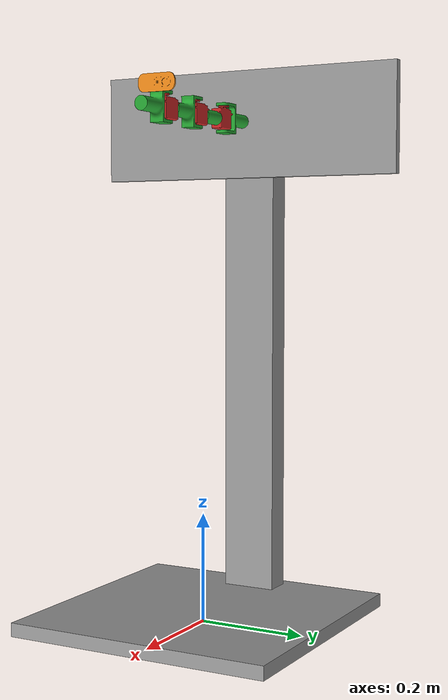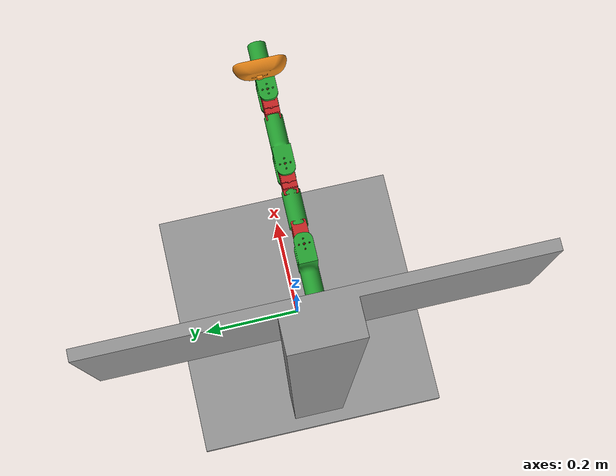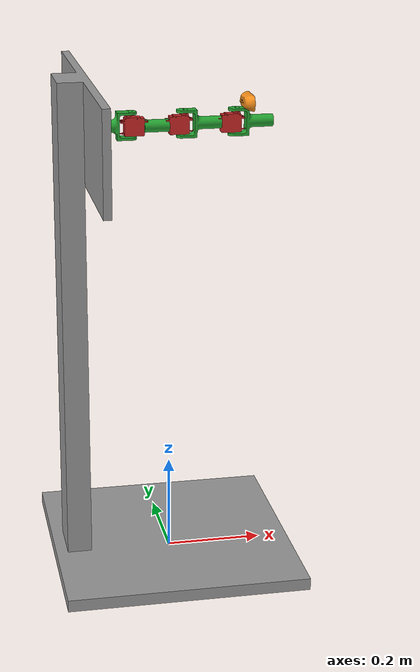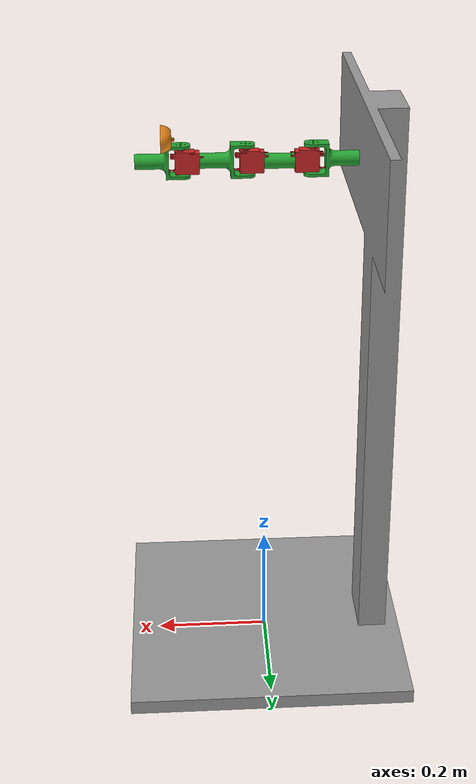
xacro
<?xml version="1.0"?>
<robot xmlns:xacro="http://www.ros.org/wiki/xacro" name="protobot">
    <xacro:arg name="initial_positions_file" default="initial_positions.yaml" />

    <!-- Import protobot urdf file -->
    <xacro:include filename="$(find protobot_description)/urdf/protobot.urdf.xacro" />

    <!-- Import control_xacro -->
    <xacro:include filename="protobot.ros2_control.xacro" />

    <xacro:protobot_ros2_control name="FakeSystem" initial_positions_file="$(arg initial_positions_file)"/>

</robot>

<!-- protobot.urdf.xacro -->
<robot name="protobot" xmlns:xacro="http://www.ros.org/wiki/xacro">

    <xacro:arg name="is_sim" default="true"/>

    <xacro:include filename="$(find protobot_description)/urdf/common_properties.xacro"/>
    <xacro:include filename="$(find protobot_description)/urdf/structure.xacro"/>
    <xacro:include filename="$(find protobot_description)/urdf/gazebo.xacro"/>
    <xacro:include filename="$(find protobot_description)/urdf/controls.xacro"/>

</robot>

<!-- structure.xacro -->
<robot xmlns:xacro="http://www.ros.org/wiki/xacro">

    <xacro:property name="mass_base" value="16.875" />
    <xacro:property name="mass_mountPost" value="2.437" />
    <xacro:property name="mass_rod0End" value="0.066" />
    <xacro:property name="mass_rod1End" value="0.111" />
    <xacro:property name="mass_servoMotor" value="0.055" />
    <xacro:property name="mass_webcam" value="0.028" />

    <link name="world" />

    <link name="base_link">
        <visual>
            <origin xyz="-0.25 -0.25 0" rpy="0 0 0" />
            <geometry>
                <mesh filename="package://protobot_description/meshes/base_gz0.01.STL"
                    scale="0.001 0.001 0.001" />
            </geometry>
            <material name="grey" />
        </visual>
        <collision>
            <origin xyz="-0.25 -0.25 0" rpy="0 0 0" />
            <geometry>
                <mesh filename="package://protobot_description/meshes/base_gz0.01.STL"
                    scale="0.001 0.001 0.001" />
            </geometry>
        </collision>
        <inertial>
            <mass value="${mass_base}" />
            <inertia ixx="0.352441" ixy="0" ixz="0"
                iyy="0.352441" iyz="0"
                izz="0.703125" />
        </inertial>
    </link>

    <link name="mountPost_link">
        <visual>
            <origin xyz="-0.0254 -0.3008 0" rpy="${pi/2} 0 ${pi/2}" />
            <geometry>
                <mesh filename="package://protobot_description/meshes/mountPost_gz0.01.STL"
                    scale="0.001 0.001 0.001" />
            </geometry>
            <material name="grey" />
        </visual>
        <collision>
            <origin xyz="-0.0254 -0.3008 0" rpy="${pi/2} 0 ${pi/2}" />
            <geometry>
                <mesh filename="package://protobot_description/meshes/mountPost_gz0.01.STL"
                    scale="0.001 0.001 0.001" />
            </geometry>
        </collision>
        <inertial>
            <mass value="${mass_mountPost}" />
            <inertia ixx="0.227504" ixy="0" ixz="0"
                iyy="0.023582" iyz="0.006557"
                izz="0.249198" />
        </inertial>
    </link>

    <link name="rod1_link">
        <visual>
            <origin xyz="0 -0.0125 -0.025" rpy="${pi/2} 0 ${pi/2}" />
            <geometry>
                <mesh filename="package://protobot_description/meshes/rod1End_gz0.01.STL"
                    scale="0.001 0.001 0.001" />
            </geometry>
            <material name="green" />
        </visual>
        <collision>
            <origin xyz="0 -0.0125 -0.025" rpy="${pi/2} 0 ${pi/2}" />
            <geometry>
                <mesh filename="package://protobot_description/meshes/rod1End_gz0.01.STL"
                    scale="0.001 0.001 0.001" />
            </geometry>
        </collision>
        <inertial>
            <mass value="${mass_rod1End}" />
            <inertia ixx="0.000078" ixy="0" ixz="0"
                iyy="0.000061" iyz="0.006557"
                izz="0.000027" />
        </inertial>
    </link>

    <link name="servo1_link">
        <visual>
            <origin xyz="0.037 -0.01 -0.043" rpy="${pi/2} 0 ${pi}" />
            <geometry>
                <mesh filename="package://protobot_description/meshes/servoMotor_gz0.01.STL"
                    scale="0.001 0.001 0.001" />
            </geometry>
            <material name="red" />
        </visual>
        <collision>
            <origin xyz="0.037 -0.01 -0.043" rpy="${pi/2} 0 ${pi}" />
            <geometry>
                <mesh filename="package://protobot_description/meshes/servoMotor_gz0.01.STL"
                    scale="0.001 0.001 0.001" />
            </geometry>
        </collision>
        <inertial>
            <mass value="${mass_servoMotor}" />
            <inertia ixx="0.000009" ixy="0" ixz="0"
                iyy="0.000009" iyz="0"
                izz="0.000014" />
        </inertial>
    </link>

    <link name="rod2_link">
        <visual>
            <origin xyz="0 -0.0125 0.0125" rpy="0 ${pi/2} 0" />
            <geometry>
                <mesh filename="package://protobot_description/meshes/rod0End_gz0.01.STL"
                    scale="0.001 0.001 0.001" />
            </geometry>
            <material name="green" />
        </visual>
        <collision>
            <origin xyz="0 -0.0125 0.0125" rpy="0 ${pi/2} 0" />
            <geometry>
                <mesh filename="package://protobot_description/meshes/rod0End_gz0.01.STL"
                    scale="0.001 0.001 0.001" />
            </geometry>
        </collision>
        <inertial>
            <mass value="${mass_rod1End}" />
            <inertia ixx="0.000016" ixy="0" ixz="0"
                iyy="0.000016" iyz="0"
                izz="0.000005" />
        </inertial>
    </link>

    <link name="servo2_link">
        <visual>
            <origin xyz="-0.007 0.01 -0.018" rpy="${pi/2} 0 0" />
            <geometry>
                <mesh filename="package://protobot_description/meshes/servoMotor_gz0.01.STL"
                    scale="0.001 0.001 0.001" />
            </geometry>
            <material name="red" />
        </visual>
        <collision>
            <origin xyz="-0.007 0.01 -0.018" rpy="${pi/2} 0 0" />
            <geometry>
                <mesh filename="package://protobot_description/meshes/servoMotor_gz0.01.STL"
                    scale="0.001 0.001 0.001" />
            </geometry>
        </collision>
        <inertial>
            <mass value="${mass_servoMotor}" />
            <inertia ixx="0.000009" ixy="0" ixz="0"
                iyy="0.000009" iyz="0"
                izz="0.000014" />
        </inertial>
    </link>

     <link name="rod3_link">
        <visual>
            <origin xyz="0.075 0.0125 -0.05" rpy="${pi/2} 0 -${pi/2}" />
            <geometry>
                <mesh filename="package://protobot_description/meshes/rod1End_gz0.01.STL"
                    scale="0.001 0.001 0.001" />
            </geometry>
            <material name="green" />
        </visual>
        <collision>
            <origin xyz="0.075 0.0125 -0.05" rpy="${pi/2} 0 -${pi/2}" />
            <geometry>
                <mesh filename="package://protobot_description/meshes/rod1End_gz0.01.STL"
                    scale="0.001 0.001 0.001" />
            </geometry>
        </collision>
        <inertial>
            <mass value="${mass_rod1End}" />
            <inertia ixx="0.000016" ixy="0" ixz="0"
                iyy="0.000016" iyz="0"
                izz="0.000005" />
        </inertial>
    </link>

    <link name="servo3_link">
        <visual>
            <origin xyz="-0.007 0.01 -0.018" rpy="${pi/2} 0 0" />
            <geometry>
                <mesh filename="package://protobot_description/meshes/servoMotor_gz0.01.STL"
                    scale="0.001 0.001 0.001" />
            </geometry>
            <material name="red" />
        </visual>
        <collision>
            <origin xyz="-0.007 0.01 -0.018" rpy="${pi/2} 0 0" />
            <geometry>
                <mesh filename="package://protobot_description/meshes/servoMotor_gz0.01.STL"
                    scale="0.001 0.001 0.001" />
            </geometry>
        </collision>
        <inertial>
            <mass value="${mass_servoMotor}" />
            <inertia ixx="0.000009" ixy="0" ixz="0"
                iyy="0.000009" iyz="0"
                izz="0.000014" />
        </inertial>
    </link>

    <link name="rod4_link">
        <visual>
            <origin xyz="0.075 0.0125 -0.05" rpy="${pi/2} 0 -${pi/2}" />
            <geometry>
                <mesh filename="package://protobot_description/meshes/rod1End_gz0.01.STL"
                    scale="0.001 0.001 0.001" />
            </geometry>
            <material name="green" />
        </visual>
        <collision>
            <origin xyz="0.075 0.0125 -0.05" rpy="${pi/2} 0 -${pi/2}" />
            <geometry>
                <mesh filename="package://protobot_description/meshes/rod1End_gz0.01.STL"
                    scale="0.001 0.001 0.001" />
            </geometry>
        </collision>
        <inertial>
            <mass value="${mass_rod1End}" />
            <inertia ixx="0.000016" ixy="0" ixz="0"
                iyy="0.000016" iyz="0"
                izz="0.000005" />
        </inertial>
    </link>

    <link name="camera_link">
        <visual>
            <origin xyz="-0.015 0.04 -0.005" rpy="0 0 -${pi/2}" />
            <geometry>
                <mesh filename="package://protobot_description/meshes/webcam_gz0.01.STL"
                    scale="0.001 0.001 0.001" />
            </geometry>
            <material name="orange" />
        </visual>
        <collision>
            <origin xyz="-0.015 0.04 -0.005" rpy="0 0 -${pi/2}" />
            <geometry>
                <mesh filename="package://protobot_description/meshes/webcam_gz0.01.STL"
                    scale="0.001 0.001 0.001" />
            </geometry>
        </collision>
        <inertial>
            <mass value="${mass_rod1End}" />
            <inertia ixx="0.000002" ixy="0" ixz="0"
                iyy="0.000011" iyz="0"
                izz="0.000010" />
        </inertial>
    </link>

    <joint name="world_base_joint" type="fixed">
        <origin xyz="0 0 0" rpy="0 0 0" />
        <parent link="world" />
        <child link="base_link" />
    </joint>

    <joint name="base_mountPost_joint" type="fixed">
        <origin xyz="-0.2 0 0.025" rpy="0 0 0" />
        <parent link="base_link" />
        <child link="mountPost_link" />
    </joint>

    <joint name="mountPost_rod1_joint" type="fixed">
        <origin xyz="0.0454 0 0.9" rpy="0 0 0" />
        <parent link="mountPost_link" />
        <child link="rod1_link" />
    </joint>

    <joint name="shoulder_joint" type="revolute">
        <origin xyz="0.075 0 0.025" rpy="0 0 0" />
        <parent link="rod1_link" />
        <child link="servo1_link" />
        <axis xyz="0 0 1" />
        <limit lower="-${pi/2}" upper="${pi/2}" effort="10" velocity="1" />
    </joint>

    <joint name="servo1_rod2_joint" type="fixed">
        <origin xyz="0.03 0 -0.025" rpy="0 0 0" />
        <parent link="servo1_link" />
        <child link="rod2_link" />
    </joint>

    <joint name="rod2_servo2_joint" type="fixed">
        <origin xyz="0.05 0 0" rpy="0 0 0" />
        <parent link="rod2_link" />
        <child link="servo2_link" />
    </joint>

    <joint name="elbow_joint" type="revolute">
        <origin xyz="0.03 0 0.025" rpy="0 0 0" />
        <parent link="servo2_link" />
        <child link="rod3_link" />
        <axis xyz="0 0 1" />
        <limit lower="-${pi/2}" upper="${pi/2}" effort="10" velocity="1" />
    </joint>

    <joint name="rod3_servo3_joint" type="fixed">
        <origin xyz="0.075 0 -0.025" rpy="0 0 0" />
        <parent link="rod3_link" />
        <child link="servo3_link" />
    </joint>

    <joint name="wrist_joint" type="revolute">
        <origin xyz="0.03 0 0.025" rpy="0 0 0" />
        <parent link="servo3_link" />
        <child link="rod4_link" />
        <axis xyz="0 0 1" />
        <limit lower="-${pi/2}" upper="${pi/2}" effort="10" velocity="1" />
    </joint>

    <joint name="rod4_camera_joint" type="fixed">
        <origin xyz="0.025 0 0.005" rpy="0 0 0" />
        <parent link="rod4_link" />
        <child link="camera_link" />
    </joint>

</robot>
